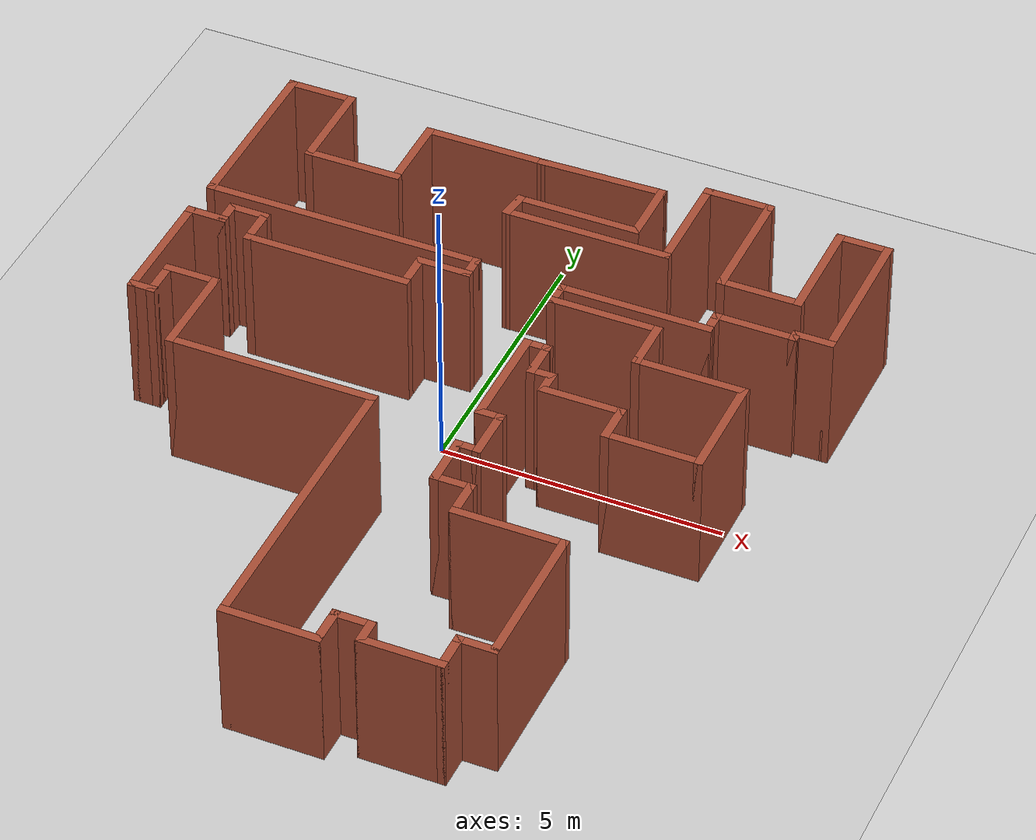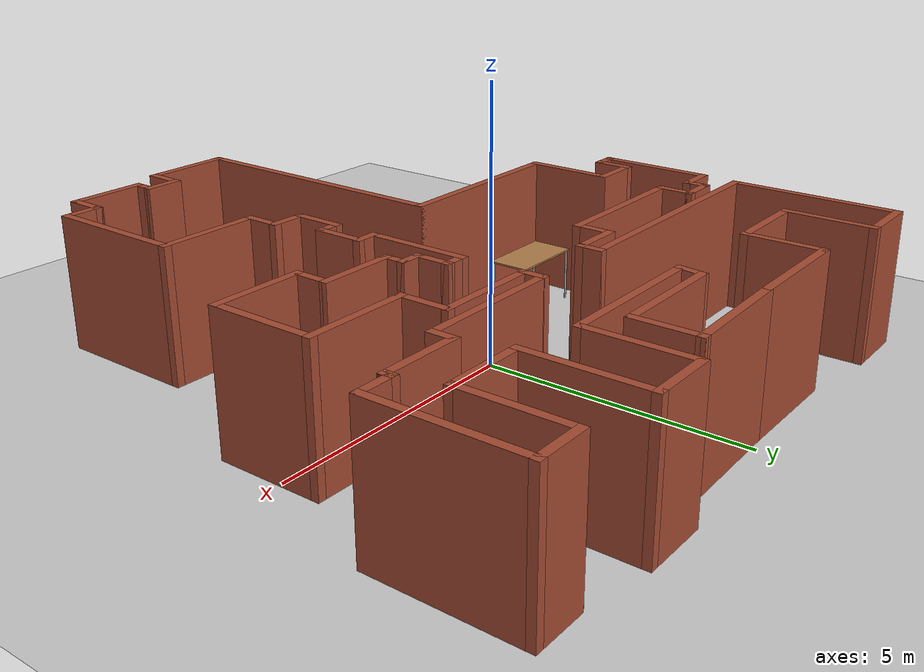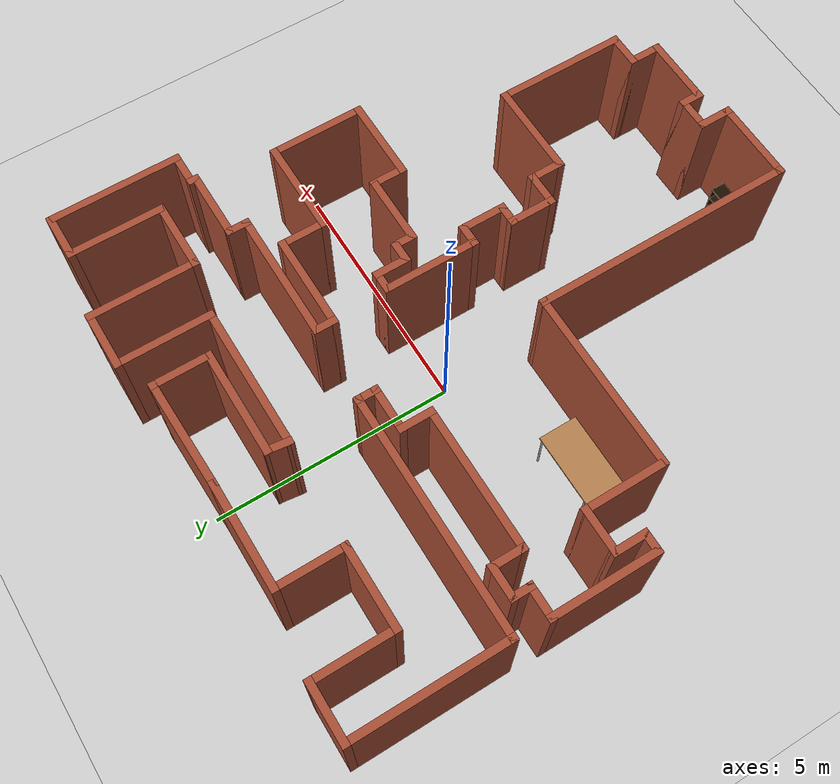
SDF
<sdf version="1.6">
 <world name="default">
  <model name="ground_plane">
   <static>1</static>
   <link name="link">
    <collision name="collision">
     <geometry><plane><normal>0 0 1</normal><size>100 100</size></plane></geometry>
     <surface>
      <contact><collide_bitmask>65535</collide_bitmask></contact>
      <friction><ode><mu>100</mu><mu2>50</mu2></ode></friction>
     </surface>
    </collision>
    <visual name="visual">
     <cast_shadows>0</cast_shadows>
     <geometry><plane><normal>0 0 1</normal><size>100 100</size></plane></geometry>
     <material>
      <script><uri>file://media/materials/scripts/gazebo.material</uri><name>Gazebo/Grey</name></script>
     </material>
    </visual>
   </link>
  </model>
  <model name="map_71">
   <pose>0.34429 -0.97627 0 0 -0 0</pose>
   <link name="Wall_0">
    <collision name="Wall_0_Collision">
     <geometry><box><size>2.25 0.15 2.5</size></box></geometry>
     <pose>0 0 1.25 0 -0 0</pose>
    </collision>
    <visual name="Wall_0_Visual">
     <pose>0 0 1.25 0 -0 0</pose>
     <geometry><box><size>2.25 0.15 2.5</size></box></geometry>
     <material>
      <script><uri>file://media/materials/scripts/gazebo.material</uri><name>Gazebo/Bricks</name></script>
      <ambient>1 1 1 1</ambient>
     </material>
     <meta><layer>0</layer></meta>
    </visual>
    <pose>-1.7 5.8 0 0 -0 3.14159</pose>
   </link>
   <link name="Wall_1">
    <collision name="Wall_1_Collision">
     <geometry><box><size>1.5 0.15 2.5</size></box></geometry>
     <pose>0 0 1.25 0 -0 0</pose>
    </collision>
    <visual name="Wall_1_Visual">
     <pose>0 0 1.25 0 -0 0</pose>
     <geometry><box><size>1.5 0.15 2.5</size></box></geometry>
     <material>
      <script><uri>file://media/materials/scripts/gazebo.material</uri><name>Gazebo/Bricks</name></script>
      <ambient>1 1 1 1</ambient>
     </material>
     <meta><layer>0</layer></meta>
    </visual>
    <pose>-2.75 5.125 0 0 -0 -1.5708</pose>
   </link>
   <link name="Wall_10">
    <collision name="Wall_10_Collision">
     <geometry><box><size>3 0.15 2.5</size></box></geometry>
     <pose>0 0 1.25 0 -0 0</pose>
    </collision>
    <visual name="Wall_10_Visual">
     <pose>0 0 1.25 0 -0 0</pose>
     <geometry><box><size>3 0.15 2.5</size></box></geometry>
     <material>
      <script><uri>file://media/materials/scripts/gazebo.material</uri><name>Gazebo/Bricks</name></script>
      <ambient>1 1 1 1</ambient>
     </material>
     <meta><layer>0</layer></meta>
    </visual>
    <pose>-2.875 2 0 0 -0 3.14159</pose>
   </link>
   <link name="Wall_11">
    <collision name="Wall_11_Collision">
     <geometry><box><size>0.75 0.15 2.5</size></box></geometry>
     <pose>0 0 1.25 0 -0 0</pose>
    </collision>
    <visual name="Wall_11_Visual">
     <pose>0 0 1.25 0 -0 0</pose>
     <geometry><box><size>0.75 0.15 2.5</size></box></geometry>
     <material>
      <script><uri>file://media/materials/scripts/gazebo.material</uri><name>Gazebo/Bricks</name></script>
      <ambient>1 1 1 1</ambient>
     </material>
     <meta><layer>0</layer></meta>
    </visual>
    <pose>-4.3 2.3 0 0 -0 1.5708</pose>
   </link>
   <link name="Wall_12">
    <collision name="Wall_12_Collision">
     <geometry><box><size>0.75 0.15 2.5</size></box></geometry>
     <pose>0 0 1.25 0 -0 0</pose>
    </collision>
    <visual name="Wall_12_Visual">
     <pose>0 0 1.25 0 -0 0</pose>
     <geometry><box><size>0.75 0.15 2.5</size></box></geometry>
     <material>
      <script><uri>file://media/materials/scripts/gazebo.material</uri><name>Gazebo/Bricks</name></script>
      <ambient>1 1 1 1</ambient>
     </material>
     <meta><layer>0</layer></meta>
    </visual>
    <pose>-4.6 2.6 0 0 -0 3.14159</pose>
   </link>
   <link name="Wall_13">
    <collision name="Wall_13_Collision">
     <geometry><box><size>0.5 0.15 2.5</size></box></geometry>
     <pose>0 0 1.25 0 -0 0</pose>
    </collision>
    <visual name="Wall_13_Visual">
     <pose>0 0 1.25 0 -0 0</pose>
     <geometry><box><size>0.5 0.15 2.5</size></box></geometry>
     <material>
      <script><uri>file://media/materials/scripts/gazebo.material</uri><name>Gazebo/Bricks</name></script>
      <ambient>1 1 1 1</ambient>
     </material>
     <meta><layer>0</layer></meta>
    </visual>
    <pose>-4.9 2.425 0 0 -0 -1.5708</pose>
   </link>
   <link name="Wall_18">
    <collision name="Wall_18_Collision">
     <geometry><box><size>0.75 0.15 2.5</size></box></geometry>
     <pose>0 0 1.25 0 -0 0</pose>
    </collision>
    <visual name="Wall_18_Visual">
     <pose>0 0 1.25 0 -0 0</pose>
     <geometry><box><size>0.75 0.15 2.5</size></box></geometry>
     <material>
      <script><uri>file://media/materials/scripts/gazebo.material</uri><name>Gazebo/Bricks</name></script>
      <ambient>1 1 1 1</ambient>
     </material>
     <meta><layer>0</layer></meta>
    </visual>
    <pose>-5.2 2.25 0 0 -0 3.14159</pose>
   </link>
   <link name="Wall_19">
    <collision name="Wall_19_Collision">
     <geometry><box><size>2.25 0.15 2.5</size></box></geometry>
     <pose>0 0 1.25 0 -0 0</pose>
    </collision>
    <visual name="Wall_19_Visual">
     <pose>0 0 1.25 0 -0 0</pose>
     <geometry><box><size>2.25 0.15 2.5</size></box></geometry>
     <material>
      <script><uri>file://media/materials/scripts/gazebo.material</uri><name>Gazebo/Bricks</name></script>
      <ambient>1 1 1 1</ambient>
     </material>
     <meta><layer>0</layer></meta>
    </visual>
    <pose>-5.5 1.2 0 0 -0 -1.5708</pose>
   </link>
   <link name="Wall_2">
    <collision name="Wall_2_Collision">
     <geometry><box><size>1.75 0.15 2.5</size></box></geometry>
     <pose>0 0 1.25 0 -0 0</pose>
    </collision>
    <visual name="Wall_2_Visual">
     <pose>0 0 1.25 0 -0 0</pose>
     <geometry><box><size>1.75 0.15 2.5</size></box></geometry>
     <material>
      <script><uri>file://media/materials/scripts/gazebo.material</uri><name>Gazebo/Bricks</name></script>
      <ambient>1 1 1 1</ambient>
     </material>
     <meta><layer>0</layer></meta>
    </visual>
    <pose>-3.55 4.45 0 0 -0 3.14159</pose>
   </link>
   <link name="Wall_20">
    <collision name="Wall_20_Collision">
     <geometry><box><size>0.5 0.15 2.5</size></box></geometry>
     <pose>0 0 1.25 0 -0 0</pose>
    </collision>
    <visual name="Wall_20_Visual">
     <pose>0 0 1.25 0 -0 0</pose>
     <geometry><box><size>0.5 0.15 2.5</size></box></geometry>
     <material>
      <script><uri>file://media/materials/scripts/gazebo.material</uri><name>Gazebo/Bricks</name></script>
      <ambient>1 1 1 1</ambient>
     </material>
     <meta><layer>0</layer></meta>
    </visual>
    <pose>-5.325 0.15 0 0 -0 0</pose>
   </link>
   <link name="Wall_21">
    <collision name="Wall_21_Collision">
     <geometry><box><size>0.75 0.15 2.5</size></box></geometry>
     <pose>0 0 1.25 0 -0 0</pose>
    </collision>
    <visual name="Wall_21_Visual">
     <pose>0 0 1.25 0 -0 0</pose>
     <geometry><box><size>0.75 0.15 2.5</size></box></geometry>
     <material>
      <script><uri>file://media/materials/scripts/gazebo.material</uri><name>Gazebo/Bricks</name></script>
      <ambient>1 1 1 1</ambient>
     </material>
     <meta><layer>0</layer></meta>
    </visual>
    <pose>-5.15 0.45 0 0 -0 1.5708</pose>
   </link>
   <link name="Wall_22">
    <collision name="Wall_22_Collision">
     <geometry><box><size>1 0.15 2.5</size></box></geometry>
     <pose>0 0 1.25 0 -0 0</pose>
    </collision>
    <visual name="Wall_22_Visual">
     <pose>0 0 1.25 0 -0 0</pose>
     <geometry><box><size>1 0.15 2.5</size></box></geometry>
     <material>
      <script><uri>file://media/materials/scripts/gazebo.material</uri><name>Gazebo/Bricks</name></script>
      <ambient>1 1 1 1</ambient>
     </material>
     <meta><layer>0</layer></meta>
    </visual>
    <pose>-4.725 0.75 0 0 -0 0</pose>
   </link>
   <link name="Wall_23">
    <collision name="Wall_23_Collision">
     <geometry><box><size>1.75 0.15 2.5</size></box></geometry>
     <pose>0 0 1.25 0 -0 0</pose>
    </collision>
    <visual name="Wall_23_Visual">
     <pose>0 0 1.25 0 -0 0</pose>
     <geometry><box><size>1.75 0.15 2.5</size></box></geometry>
     <material>
      <script><uri>file://media/materials/scripts/gazebo.material</uri><name>Gazebo/Bricks</name></script>
      <ambient>1 1 1 1</ambient>
     </material>
     <meta><layer>0</layer></meta>
    </visual>
    <pose>-4.3 -0.05 0 0 -0 -1.5708</pose>
   </link>
   <link name="Wall_24">
    <collision name="Wall_24_Collision">
     <geometry><box><size>3.75 0.15 2.5</size></box></geometry>
     <pose>0 0 1.25 0 -0 0</pose>
    </collision>
    <visual name="Wall_24_Visual">
     <pose>0 0 1.25 0 -0 0</pose>
     <geometry><box><size>3.75 0.15 2.5</size></box></geometry>
     <material>
      <script><uri>file://media/materials/scripts/gazebo.material</uri><name>Gazebo/Bricks</name></script>
      <ambient>1 1 1 1</ambient>
     </material>
     <meta><layer>0</layer></meta>
    </visual>
    <pose>-2.5 -0.85 0 0 -0 0</pose>
   </link>
   <link name="Wall_25">
    <collision name="Wall_25_Collision">
     <geometry><box><size>5.5 0.15 2.5</size></box></geometry>
     <pose>0 0 1.25 0 -0 0</pose>
    </collision>
    <visual name="Wall_25_Visual">
     <pose>0 0 1.25 0 -0 0</pose>
     <geometry><box><size>5.5 0.15 2.5</size></box></geometry>
     <material>
      <script><uri>file://media/materials/scripts/gazebo.material</uri><name>Gazebo/Bricks</name></script>
      <ambient>1 1 1 1</ambient>
     </material>
     <meta><layer>0</layer></meta>
    </visual>
    <pose>-0.7 -3.525 0 0 -0 -1.5708</pose>
   </link>
   <link name="Wall_26">
    <collision name="Wall_26_Collision">
     <geometry><box><size>1.75 0.15 2.5</size></box></geometry>
     <pose>0 0 1.25 0 -0 0</pose>
    </collision>
    <visual name="Wall_26_Visual">
     <pose>0 0 1.25 0 -0 0</pose>
     <geometry><box><size>1.75 0.15 2.5</size></box></geometry>
     <material>
      <script><uri>file://media/materials/scripts/gazebo.material</uri><name>Gazebo/Bricks</name></script>
      <ambient>1 1 1 1</ambient>
     </material>
     <meta><layer>0</layer></meta>
    </visual>
    <pose>0.1 -6.2 0 0 -0 0</pose>
   </link>
   <link name="Wall_27">
    <collision name="Wall_27_Collision">
     <geometry><box><size>0.75 0.15 2.5</size></box></geometry>
     <pose>0 0 1.25 0 -0 0</pose>
    </collision>
    <visual name="Wall_27_Visual">
     <pose>0 0 1.25 0 -0 0</pose>
     <geometry><box><size>0.75 0.15 2.5</size></box></geometry>
     <material>
      <script><uri>file://media/materials/scripts/gazebo.material</uri><name>Gazebo/Bricks</name></script>
      <ambient>1 1 1 1</ambient>
     </material>
     <meta><layer>0</layer></meta>
    </visual>
    <pose>0.9 -5.9 0 0 -0 1.5708</pose>
   </link>
   <link name="Wall_28">
    <collision name="Wall_28_Collision">
     <geometry><box><size>0.75 0.15 2.5</size></box></geometry>
     <pose>0 0 1.25 0 -0 0</pose>
    </collision>
    <visual name="Wall_28_Visual">
     <pose>0 0 1.25 0 -0 0</pose>
     <geometry><box><size>0.75 0.15 2.5</size></box></geometry>
     <material>
      <script><uri>file://media/materials/scripts/gazebo.material</uri><name>Gazebo/Bricks</name></script>
      <ambient>1 1 1 1</ambient>
     </material>
     <meta><layer>0</layer></meta>
    </visual>
    <pose>1.2 -5.6 0 0 -0 0</pose>
   </link>
   <link name="Wall_29">
    <collision name="Wall_29_Collision">
     <geometry><box><size>0.5 0.15 2.5</size></box></geometry>
     <pose>0 0 1.25 0 -0 0</pose>
    </collision>
    <visual name="Wall_29_Visual">
     <pose>0 0 1.25 0 -0 0</pose>
     <geometry><box><size>0.5 0.15 2.5</size></box></geometry>
     <material>
      <script><uri>file://media/materials/scripts/gazebo.material</uri><name>Gazebo/Bricks</name></script>
      <ambient>1 1 1 1</ambient>
     </material>
     <meta><layer>0</layer></meta>
    </visual>
    <pose>1.5 -5.775 0 0 -0 -1.5708</pose>
   </link>
   <link name="Wall_3">
    <collision name="Wall_3_Collision">
     <geometry><box><size>1.75 0.15 2.5</size></box></geometry>
     <pose>0 0 1.25 0 -0 0</pose>
    </collision>
    <visual name="Wall_3_Visual">
     <pose>0 0 1.25 0 -0 0</pose>
     <geometry><box><size>1.75 0.15 2.5</size></box></geometry>
     <material>
      <script><uri>file://media/materials/scripts/gazebo.material</uri><name>Gazebo/Bricks</name></script>
      <ambient>1 1 1 1</ambient>
     </material>
     <meta><layer>0</layer></meta>
    </visual>
    <pose>-4.35 5.25 0 0 -0 1.5708</pose>
   </link>
   <link name="Wall_30">
    <collision name="Wall_30_Collision">
     <geometry><box><size>1.5 0.15 2.5</size></box></geometry>
     <pose>0 0 1.25 0 -0 0</pose>
    </collision>
    <visual name="Wall_30_Visual">
     <pose>0 0 1.25 0 -0 0</pose>
     <geometry><box><size>1.5 0.15 2.5</size></box></geometry>
     <material>
      <script><uri>file://media/materials/scripts/gazebo.material</uri><name>Gazebo/Bricks</name></script>
      <ambient>1 1 1 1</ambient>
     </material>
     <meta><layer>0</layer></meta>
    </visual>
    <pose>2.175 -5.95 0 0 -0 0</pose>
   </link>
   <link name="Wall_31">
    <collision name="Wall_31_Collision">
     <geometry><box><size>0.75 0.15 2.5</size></box></geometry>
     <pose>0 0 1.25 0 -0 0</pose>
    </collision>
    <visual name="Wall_31_Visual">
     <pose>0 0 1.25 0 -0 0</pose>
     <geometry><box><size>0.75 0.15 2.5</size></box></geometry>
     <material>
      <script><uri>file://media/materials/scripts/gazebo.material</uri><name>Gazebo/Bricks</name></script>
      <ambient>1 1 1 1</ambient>
     </material>
     <meta><layer>0</layer></meta>
    </visual>
    <pose>2.85 -5.65 0 0 -0 1.5708</pose>
   </link>
   <link name="Wall_32">
    <collision name="Wall_32_Collision">
     <geometry><box><size>0.75 0.15 2.5</size></box></geometry>
     <pose>0 0 1.25 0 -0 0</pose>
    </collision>
    <visual name="Wall_32_Visual">
     <pose>0 0 1.25 0 -0 0</pose>
     <geometry><box><size>0.75 0.15 2.5</size></box></geometry>
     <material>
      <script><uri>file://media/materials/scripts/gazebo.material</uri><name>Gazebo/Bricks</name></script>
      <ambient>1 1 1 1</ambient>
     </material>
     <meta><layer>0</layer></meta>
    </visual>
    <pose>3.15 -5.35 0 0 -0 0</pose>
   </link>
   <link name="Wall_33">
    <collision name="Wall_33_Collision">
     <geometry><box><size>2.75 0.15 2.5</size></box></geometry>
     <pose>0 0 1.25 0 -0 0</pose>
    </collision>
    <visual name="Wall_33_Visual">
     <pose>0 0 1.25 0 -0 0</pose>
     <geometry><box><size>2.75 0.15 2.5</size></box></geometry>
     <material>
      <script><uri>file://media/materials/scripts/gazebo.material</uri><name>Gazebo/Bricks</name></script>
      <ambient>1 1 1 1</ambient>
     </material>
     <meta><layer>0</layer></meta>
    </visual>
    <pose>3.45 -4.05 0 0 -0 1.5708</pose>
   </link>
   <link name="Wall_34">
    <collision name="Wall_34_Collision">
     <geometry><box><size>2 0.15 2.5</size></box></geometry>
     <pose>0 0 1.25 0 -0 0</pose>
    </collision>
    <visual name="Wall_34_Visual">
     <pose>0 0 1.25 0 -0 0</pose>
     <geometry><box><size>2 0.15 2.5</size></box></geometry>
     <material>
      <script><uri>file://media/materials/scripts/gazebo.material</uri><name>Gazebo/Bricks</name></script>
      <ambient>1 1 1 1</ambient>
     </material>
     <meta><layer>0</layer></meta>
    </visual>
    <pose>2.525 -2.75 0 0 -0 3.14159</pose>
   </link>
   <link name="Wall_35">
    <collision name="Wall_35_Collision">
     <geometry><box><size>0.75 0.15 2.5</size></box></geometry>
     <pose>0 0 1.25 0 -0 0</pose>
    </collision>
    <visual name="Wall_35_Visual">
     <pose>0 0 1.25 0 -0 0</pose>
     <geometry><box><size>0.75 0.15 2.5</size></box></geometry>
     <material>
      <script><uri>file://media/materials/scripts/gazebo.material</uri><name>Gazebo/Bricks</name></script>
      <ambient>1 1 1 1</ambient>
     </material>
     <meta><layer>0</layer></meta>
    </visual>
    <pose>1.6 -2.45 0 0 -0 1.5708</pose>
   </link>
   <link name="Wall_36">
    <collision name="Wall_36_Collision">
     <geometry><box><size>0.75 0.15 2.5</size></box></geometry>
     <pose>0 0 1.25 0 -0 0</pose>
    </collision>
    <visual name="Wall_36_Visual">
     <pose>0 0 1.25 0 -0 0</pose>
     <geometry><box><size>0.75 0.15 2.5</size></box></geometry>
     <material>
      <script><uri>file://media/materials/scripts/gazebo.material</uri><name>Gazebo/Bricks</name></script>
      <ambient>1 1 1 1</ambient>
     </material>
     <meta><layer>0</layer></meta>
    </visual>
    <pose>1.3 -2.15 0 0 -0 3.14159</pose>
   </link>
   <link name="Wall_37">
    <collision name="Wall_37_Collision">
     <geometry><box><size>1 0.15 2.5</size></box></geometry>
     <pose>0 0 1.25 0 -0 0</pose>
    </collision>
    <visual name="Wall_37_Visual">
     <pose>0 0 1.25 0 -0 0</pose>
     <geometry><box><size>1 0.15 2.5</size></box></geometry>
     <material>
      <script><uri>file://media/materials/scripts/gazebo.material</uri><name>Gazebo/Bricks</name></script>
      <ambient>1 1 1 1</ambient>
     </material>
     <meta><layer>0</layer></meta>
    </visual>
    <pose>1 -1.725 0 0 -0 1.5708</pose>
   </link>
   <link name="Wall_38">
    <collision name="Wall_38_Collision">
     <geometry><box><size>0.5 0.15 2.5</size></box></geometry>
     <pose>0 0 1.25 0 -0 0</pose>
    </collision>
    <visual name="Wall_38_Visual">
     <pose>0 0 1.25 0 -0 0</pose>
     <geometry><box><size>0.5 0.15 2.5</size></box></geometry>
     <material>
      <script><uri>file://media/materials/scripts/gazebo.material</uri><name>Gazebo/Bricks</name></script>
      <ambient>1 1 1 1</ambient>
     </material>
     <meta><layer>0</layer></meta>
    </visual>
    <pose>1.175 -1.3 0 0 -0 0</pose>
   </link>
   <link name="Wall_39">
    <collision name="Wall_39_Collision">
     <geometry><box><size>1 0.15 2.5</size></box></geometry>
     <pose>0 0 1.25 0 -0 0</pose>
    </collision>
    <visual name="Wall_39_Visual">
     <pose>0 0 1.25 0 -0 0</pose>
     <geometry><box><size>1 0.15 2.5</size></box></geometry>
     <material>
      <script><uri>file://media/materials/scripts/gazebo.material</uri><name>Gazebo/Bricks</name></script>
      <ambient>1 1 1 1</ambient>
     </material>
     <meta><layer>0</layer></meta>
    </visual>
    <pose>1.35 -0.875 0 0 -0 1.5708</pose>
   </link>
   <link name="Wall_4">
    <collision name="Wall_4_Collision">
     <geometry><box><size>1.25 0.15 2.5</size></box></geometry>
     <pose>0 0 1.25 0 -0 0</pose>
    </collision>
    <visual name="Wall_4_Visual">
     <pose>0 0 1.25 0 -0 0</pose>
     <geometry><box><size>1.25 0.15 2.5</size></box></geometry>
     <material>
      <script><uri>file://media/materials/scripts/gazebo.material</uri><name>Gazebo/Bricks</name></script>
      <ambient>1 1 1 1</ambient>
     </material>
     <meta><layer>0</layer></meta>
    </visual>
    <pose>-4.9 6.05 0 0 -0 3.14159</pose>
   </link>
   <link name="Wall_40">
    <collision name="Wall_40_Collision">
     <geometry><box><size>0.5 0.15 2.5</size></box></geometry>
     <pose>0 0 1.25 0 -0 0</pose>
    </collision>
    <visual name="Wall_40_Visual">
     <pose>0 0 1.25 0 -0 0</pose>
     <geometry><box><size>0.5 0.15 2.5</size></box></geometry>
     <material>
      <script><uri>file://media/materials/scripts/gazebo.material</uri><name>Gazebo/Bricks</name></script>
      <ambient>1 1 1 1</ambient>
     </material>
     <meta><layer>0</layer></meta>
    </visual>
    <pose>1.175 -0.45 0 0 -0 3.14159</pose>
   </link>
   <link name="Wall_41">
    <collision name="Wall_41_Collision">
     <geometry><box><size>2 0.15 2.5</size></box></geometry>
     <pose>0 0 1.25 0 -0 0</pose>
    </collision>
    <visual name="Wall_41_Visual">
     <pose>0 0 1.25 0 -0 0</pose>
     <geometry><box><size>2 0.15 2.5</size></box></geometry>
     <material>
      <script><uri>file://media/materials/scripts/gazebo.material</uri><name>Gazebo/Bricks</name></script>
      <ambient>1 1 1 1</ambient>
     </material>
     <meta><layer>0</layer></meta>
    </visual>
    <pose>1 0.475 0 0 -0 1.5708</pose>
   </link>
   <link name="Wall_42">
    <collision name="Wall_42_Collision">
     <geometry><box><size>0.5 0.15 2.5</size></box></geometry>
     <pose>0 0 1.25 0 -0 0</pose>
    </collision>
    <visual name="Wall_42_Visual">
     <pose>0 0 1.25 0 -0 0</pose>
     <geometry><box><size>0.5 0.15 2.5</size></box></geometry>
     <material>
      <script><uri>file://media/materials/scripts/gazebo.material</uri><name>Gazebo/Bricks</name></script>
      <ambient>1 1 1 1</ambient>
     </material>
     <meta><layer>0</layer></meta>
    </visual>
    <pose>1.175 1.4 0 0 -0 0</pose>
   </link>
   <link name="Wall_43">
    <collision name="Wall_43_Collision">
     <geometry><box><size>0.75 0.15 2.5</size></box></geometry>
     <pose>0 0 1.25 0 -0 0</pose>
    </collision>
    <visual name="Wall_43_Visual">
     <pose>0 0 1.25 0 -0 0</pose>
     <geometry><box><size>0.75 0.15 2.5</size></box></geometry>
     <material>
      <script><uri>file://media/materials/scripts/gazebo.material</uri><name>Gazebo/Bricks</name></script>
      <ambient>1 1 1 1</ambient>
     </material>
     <meta><layer>0</layer></meta>
    </visual>
    <pose>1.35 1.1 0 0 -0 -1.5708</pose>
   </link>
   <link name="Wall_44">
    <collision name="Wall_44_Collision">
     <geometry><box><size>0.5 0.15 2.5</size></box></geometry>
     <pose>0 0 1.25 0 -0 0</pose>
    </collision>
    <visual name="Wall_44_Visual">
     <pose>0 0 1.25 0 -0 0</pose>
     <geometry><box><size>0.5 0.15 2.5</size></box></geometry>
     <material>
      <script><uri>file://media/materials/scripts/gazebo.material</uri><name>Gazebo/Bricks</name></script>
      <ambient>1 1 1 1</ambient>
     </material>
     <meta><layer>0</layer></meta>
    </visual>
    <pose>1.525 0.8 0 0 -0 0</pose>
   </link>
   <link name="Wall_45">
    <collision name="Wall_45_Collision">
     <geometry><box><size>0.5 0.15 2.5</size></box></geometry>
     <pose>0 0 1.25 0 -0 0</pose>
    </collision>
    <visual name="Wall_45_Visual">
     <pose>0 0 1.25 0 -0 0</pose>
     <geometry><box><size>0.5 0.15 2.5</size></box></geometry>
     <material>
      <script><uri>file://media/materials/scripts/gazebo.material</uri><name>Gazebo/Bricks</name></script>
      <ambient>1 1 1 1</ambient>
     </material>
     <meta><layer>0</layer></meta>
    </visual>
    <pose>1.7 0.625 0 0 -0 -1.5708</pose>
   </link>
   <link name="Wall_46">
    <collision name="Wall_46_Collision">
     <geometry><box><size>1.5 0.15 2.5</size></box></geometry>
     <pose>0 0 1.25 0 -0 0</pose>
    </collision>
    <visual name="Wall_46_Visual">
     <pose>0 0 1.25 0 -0 0</pose>
     <geometry><box><size>1.5 0.15 2.5</size></box></geometry>
     <material>
      <script><uri>file://media/materials/scripts/gazebo.material</uri><name>Gazebo/Bricks</name></script>
      <ambient>1 1 1 1</ambient>
     </material>
     <meta><layer>0</layer></meta>
    </visual>
    <pose>2.375 0.45 0 0 -0 0</pose>
   </link>
   <link name="Wall_47">
    <collision name="Wall_47_Collision">
     <geometry><box><size>0.75 0.15 2.5</size></box></geometry>
     <pose>0 0 1.25 0 -0 0</pose>
    </collision>
    <visual name="Wall_47_Visual">
     <pose>0 0 1.25 0 -0 0</pose>
     <geometry><box><size>0.75 0.15 2.5</size></box></geometry>
     <material>
      <script><uri>file://media/materials/scripts/gazebo.material</uri><name>Gazebo/Bricks</name></script>
      <ambient>1 1 1 1</ambient>
     </material>
     <meta><layer>0</layer></meta>
    </visual>
    <pose>3.05 0.15 0 0 -0 -1.5708</pose>
   </link>
   <link name="Wall_48">
    <collision name="Wall_48_Collision">
     <geometry><box><size>1.75 0.15 2.5</size></box></geometry>
     <pose>0 0 1.25 0 -0 0</pose>
    </collision>
    <visual name="Wall_48_Visual">
     <pose>0 0 1.25 0 -0 0</pose>
     <geometry><box><size>1.75 0.15 2.5</size></box></geometry>
     <material>
      <script><uri>file://media/materials/scripts/gazebo.material</uri><name>Gazebo/Bricks</name></script>
      <ambient>1 1 1 1</ambient>
     </material>
     <meta><layer>0</layer></meta>
    </visual>
    <pose>3.85 -0.15 0 0 -0 0</pose>
   </link>
   <link name="Wall_49">
    <collision name="Wall_49_Collision">
     <geometry><box><size>2 0.15 2.5</size></box></geometry>
     <pose>0 0 1.25 0 -0 0</pose>
    </collision>
    <visual name="Wall_49_Visual">
     <pose>0 0 1.25 0 -0 0</pose>
     <geometry><box><size>2 0.15 2.5</size></box></geometry>
     <material>
      <script><uri>file://media/materials/scripts/gazebo.material</uri><name>Gazebo/Bricks</name></script>
      <ambient>1 1 1 1</ambient>
     </material>
     <meta><layer>0</layer></meta>
    </visual>
    <pose>4.65 0.775 0 0 -0 1.5708</pose>
   </link>
   <link name="Wall_5">
    <collision name="Wall_5_Collision">
     <geometry><box><size>3.25 0.15 2.5</size></box></geometry>
     <pose>0 0 1.25 0 -0 0</pose>
    </collision>
    <visual name="Wall_5_Visual">
     <pose>0 0 1.25 0 -0 0</pose>
     <geometry><box><size>3.25 0.15 2.5</size></box></geometry>
     <material>
      <script><uri>file://media/materials/scripts/gazebo.material</uri><name>Gazebo/Bricks</name></script>
      <ambient>1 1 1 1</ambient>
     </material>
     <meta><layer>0</layer></meta>
    </visual>
    <pose>-5.45 4.5 0 0 -0 -1.5708</pose>
   </link>
   <link name="Wall_50">
    <collision name="Wall_50_Collision">
     <geometry><box><size>2 0.15 2.5</size></box></geometry>
     <pose>0 0 1.25 0 -0 0</pose>
    </collision>
    <visual name="Wall_50_Visual">
     <pose>0 0 1.25 0 -0 0</pose>
     <geometry><box><size>2 0.15 2.5</size></box></geometry>
     <material>
      <script><uri>file://media/materials/scripts/gazebo.material</uri><name>Gazebo/Bricks</name></script>
      <ambient>1 1 1 1</ambient>
     </material>
     <meta><layer>0</layer></meta>
    </visual>
    <pose>3.725 1.7 0 0 -0 3.14159</pose>
   </link>
   <link name="Wall_51">
    <collision name="Wall_51_Collision">
     <geometry><box><size>1 0.15 2.5</size></box></geometry>
     <pose>0 0 1.25 0 -0 0</pose>
    </collision>
    <visual name="Wall_51_Visual">
     <pose>0 0 1.25 0 -0 0</pose>
     <geometry><box><size>1 0.15 2.5</size></box></geometry>
     <material>
      <script><uri>file://media/materials/scripts/gazebo.material</uri><name>Gazebo/Bricks</name></script>
      <ambient>1 1 1 1</ambient>
     </material>
     <meta><layer>0</layer></meta>
    </visual>
    <pose>2.8 2.125 0 0 -0 1.5708</pose>
   </link>
   <link name="Wall_52">
    <collision name="Wall_52_Collision">
     <geometry><box><size>2 0.15 2.5</size></box></geometry>
     <pose>0 0 1.25 0 -0 0</pose>
    </collision>
    <visual name="Wall_52_Visual">
     <pose>0 0 1.25 0 -0 0</pose>
     <geometry><box><size>2 0.15 2.5</size></box></geometry>
     <material>
      <script><uri>file://media/materials/scripts/gazebo.material</uri><name>Gazebo/Bricks</name></script>
      <ambient>1 1 1 1</ambient>
     </material>
     <meta><layer>0</layer></meta>
    </visual>
    <pose>1.875 2.55 0 0 -0 3.14159</pose>
   </link>
   <link name="Wall_53">
    <collision name="Wall_53_Collision">
     <geometry><box><size>0.5 0.15 2.5</size></box></geometry>
     <pose>0 0 1.25 0 -0 0</pose>
    </collision>
    <visual name="Wall_53_Visual">
     <pose>0 0 1.25 0 -0 0</pose>
     <geometry><box><size>0.5 0.15 2.5</size></box></geometry>
     <material>
      <script><uri>file://media/materials/scripts/gazebo.material</uri><name>Gazebo/Bricks</name></script>
      <ambient>1 1 1 1</ambient>
     </material>
     <meta><layer>0</layer></meta>
    </visual>
    <pose>0.95 2.725 0 0 -0 1.5708</pose>
   </link>
   <link name="Wall_54">
    <collision name="Wall_54_Collision">
     <geometry><box><size>2.75 0.15 2.5</size></box></geometry>
     <pose>0 0 1.25 0 -0 0</pose>
    </collision>
    <visual name="Wall_54_Visual">
     <pose>0 0 1.25 0 -0 0</pose>
     <geometry><box><size>2.75 0.15 2.5</size></box></geometry>
     <material>
      <script><uri>file://media/materials/scripts/gazebo.material</uri><name>Gazebo/Bricks</name></script>
      <ambient>1 1 1 1</ambient>
     </material>
     <meta><layer>0</layer></meta>
    </visual>
    <pose>2.25 2.9 0 0 -0 0</pose>
   </link>
   <link name="Wall_55">
    <collision name="Wall_55_Collision">
     <geometry><box><size>0.5 0.15 2.5</size></box></geometry>
     <pose>0 0 1.25 0 -0 0</pose>
    </collision>
    <visual name="Wall_55_Visual">
     <pose>0 0 1.25 0 -0 0</pose>
     <geometry><box><size>0.5 0.15 2.5</size></box></geometry>
     <material>
      <script><uri>file://media/materials/scripts/gazebo.material</uri><name>Gazebo/Bricks</name></script>
      <ambient>1 1 1 1</ambient>
     </material>
     <meta><layer>0</layer></meta>
    </visual>
    <pose>3.55 3.075 0 0 -0 1.5708</pose>
   </link>
   <link name="Wall_56">
    <collision name="Wall_56_Collision">
     <geometry><box><size>1.5 0.15 2.5</size></box></geometry>
     <pose>0 0 1.25 0 -0 0</pose>
    </collision>
    <visual name="Wall_56_Visual">
     <pose>0 0 1.25 0 -0 0</pose>
     <geometry><box><size>1.5 0.15 2.5</size></box></geometry>
     <material>
      <script><uri>file://media/materials/scripts/gazebo.material</uri><name>Gazebo/Bricks</name></script>
      <ambient>1 1 1 1</ambient>
     </material>
     <meta><layer>0</layer></meta>
    </visual>
    <pose>4.225 3.25 0 0 -0 0</pose>
   </link>
   <link name="Wall_57">
    <collision name="Wall_57_Collision">
     <geometry><box><size>0.25 0.15 2.5</size></box></geometry>
     <pose>0 0 1.25 0 -0 0</pose>
    </collision>
    <visual name="Wall_57_Visual">
     <pose>0 0 1.25 0 -0 0</pose>
     <geometry><box><size>0.25 0.15 2.5</size></box></geometry>
     <material>
      <script><uri>file://media/materials/scripts/gazebo.material</uri><name>Gazebo/Bricks</name></script>
      <ambient>1 1 1 1</ambient>
     </material>
     <meta><layer>0</layer></meta>
    </visual>
    <pose>4.9 3.3 0 0 -0 1.5708</pose>
   </link>
   <link name="Wall_58">
    <collision name="Wall_58_Collision">
     <geometry><box><size>0.75 0.15 2.5</size></box></geometry>
     <pose>0 0 1.25 0 -0 0</pose>
    </collision>
    <visual name="Wall_58_Visual">
     <pose>0 0 1.25 0 -0 0</pose>
     <geometry><box><size>0.75 0.15 2.5</size></box></geometry>
     <material>
      <script><uri>file://media/materials/scripts/gazebo.material</uri><name>Gazebo/Bricks</name></script>
      <ambient>1 1 1 1</ambient>
     </material>
     <meta><layer>0</layer></meta>
    </visual>
    <pose>5.2 3.35 0 0 -0 0</pose>
   </link>
   <link name="Wall_59">
    <collision name="Wall_59_Collision">
     <geometry><box><size>2.75 0.15 2.5</size></box></geometry>
     <pose>0 0 1.25 0 -0 0</pose>
    </collision>
    <visual name="Wall_59_Visual">
     <pose>0 0 1.25 0 -0 0</pose>
     <geometry><box><size>2.75 0.15 2.5</size></box></geometry>
     <material>
      <script><uri>file://media/materials/scripts/gazebo.material</uri><name>Gazebo/Bricks</name></script>
      <ambient>1 1 1 1</ambient>
     </material>
     <meta><layer>0</layer></meta>
    </visual>
    <pose>5.5 4.65 0 0 -0 1.5708</pose>
   </link>
   <link name="Wall_6">
    <collision name="Wall_6_Collision">
     <geometry><box><size>5 0.15 2.5</size></box></geometry>
     <pose>0 0 1.25 0 -0 0</pose>
    </collision>
    <visual name="Wall_6_Visual">
     <pose>0 0 1.25 0 -0 0</pose>
     <geometry><box><size>5 0.15 2.5</size></box></geometry>
     <material>
      <script><uri>file://media/materials/scripts/gazebo.material</uri><name>Gazebo/Bricks</name></script>
      <ambient>1 1 1 1</ambient>
     </material>
     <meta><layer>0</layer></meta>
    </visual>
    <pose>-3.025 2.95 0 0 -0 0</pose>
   </link>
   <link name="Wall_60">
    <collision name="Wall_60_Collision">
     <geometry><box><size>1 0.15 2.5</size></box></geometry>
     <pose>0 0 1.25 0 -0 0</pose>
    </collision>
    <visual name="Wall_60_Visual">
     <pose>0 0 1.25 0 -0 0</pose>
     <geometry><box><size>1 0.15 2.5</size></box></geometry>
     <material>
      <script><uri>file://media/materials/scripts/gazebo.material</uri><name>Gazebo/Bricks</name></script>
      <ambient>1 1 1 1</ambient>
     </material>
     <meta><layer>0</layer></meta>
    </visual>
    <pose>5.075 5.95 0 0 -0 3.14159</pose>
   </link>
   <link name="Wall_62">
    <collision name="Wall_62_Collision">
     <geometry><box><size>2 0.15 2.5</size></box></geometry>
     <pose>0 0 1.25 0 -0 0</pose>
    </collision>
    <visual name="Wall_62_Visual">
     <pose>0 0 1.25 0 -0 0</pose>
     <geometry><box><size>2 0.15 2.5</size></box></geometry>
     <material>
      <script><uri>file://media/materials/scripts/gazebo.material</uri><name>Gazebo/Bricks</name></script>
      <ambient>1 1 1 1</ambient>
     </material>
     <meta><layer>0</layer></meta>
    </visual>
    <pose>4.65 5.025 0 0 -0 -1.5708</pose>
   </link>
   <link name="Wall_63">
    <collision name="Wall_63_Collision">
     <geometry><box><size>1.5 0.15 2.5</size></box></geometry>
     <pose>0 0 1.25 0 -0 0</pose>
    </collision>
    <visual name="Wall_63_Visual">
     <pose>0 0 1.25 0 -0 0</pose>
     <geometry><box><size>1.5 0.15 2.5</size></box></geometry>
     <material>
      <script><uri>file://media/materials/scripts/gazebo.material</uri><name>Gazebo/Bricks</name></script>
      <ambient>1 1 1 1</ambient>
     </material>
     <meta><layer>0</layer></meta>
    </visual>
    <pose>3.975 4.1 0 0 -0 3.14159</pose>
   </link>
   <link name="Wall_64">
    <collision name="Wall_64_Collision">
     <geometry><box><size>2.25 0.15 2.5</size></box></geometry>
     <pose>0 0 1.25 0 -0 0</pose>
    </collision>
    <visual name="Wall_64_Visual">
     <pose>0 0 1.25 0 -0 0</pose>
     <geometry><box><size>2.25 0.15 2.5</size></box></geometry>
     <material>
      <script><uri>file://media/materials/scripts/gazebo.material</uri><name>Gazebo/Bricks</name></script>
      <ambient>1 1 1 1</ambient>
     </material>
     <meta><layer>0</layer></meta>
    </visual>
    <pose>3.3 5.15 0 0 -0 1.5708</pose>
   </link>
   <link name="Wall_65">
    <collision name="Wall_65_Collision">
     <geometry><box><size>1.25 0.15 2.5</size></box></geometry>
     <pose>0 0 1.25 0 -0 0</pose>
    </collision>
    <visual name="Wall_65_Visual">
     <pose>0 0 1.25 0 -0 0</pose>
     <geometry><box><size>1.25 0.15 2.5</size></box></geometry>
     <material>
      <script><uri>file://media/materials/scripts/gazebo.material</uri><name>Gazebo/Bricks</name></script>
      <ambient>1 1 1 1</ambient>
     </material>
     <meta><layer>0</layer></meta>
    </visual>
    <pose>2.75 6.2 0 0 -0 3.14159</pose>
   </link>
   <link name="Wall_66">
    <collision name="Wall_66_Collision">
     <geometry><box><size>2 0.15 2.5</size></box></geometry>
     <pose>0 0 1.25 0 -0 0</pose>
    </collision>
    <visual name="Wall_66_Visual">
     <pose>0 0 1.25 0 -0 0</pose>
     <geometry><box><size>2 0.15 2.5</size></box></geometry>
     <material>
      <script><uri>file://media/materials/scripts/gazebo.material</uri><name>Gazebo/Bricks</name></script>
      <ambient>1 1 1 1</ambient>
     </material>
     <meta><layer>0</layer></meta>
    </visual>
    <pose>2.2 5.275 0 0 -0 -1.5708</pose>
   </link>
   <link name="Wall_7">
    <collision name="Wall_7_Collision">
     <geometry><box><size>0.5 0.15 2.5</size></box></geometry>
     <pose>0 0 1.25 0 -0 0</pose>
    </collision>
    <visual name="Wall_7_Visual">
     <pose>0 0 1.25 0 -0 0</pose>
     <geometry><box><size>0.5 0.15 2.5</size></box></geometry>
     <material>
      <script><uri>file://media/materials/scripts/gazebo.material</uri><name>Gazebo/Bricks</name></script>
      <ambient>1 1 1 1</ambient>
     </material>
     <meta><layer>0</layer></meta>
    </visual>
    <pose>-0.6 2.775 0 0 -0 -1.5708</pose>
   </link>
   <link name="Wall_73">
    <collision name="Wall_73_Collision">
     <geometry><box><size>2.25 0.15 2.5</size></box></geometry>
     <pose>0 0 1.25 0 -0 0</pose>
    </collision>
    <visual name="Wall_73_Visual">
     <pose>0 0 1.25 0 -0 0</pose>
     <geometry><box><size>2.25 0.15 2.5</size></box></geometry>
     <material>
      <script><uri>file://media/materials/scripts/gazebo.material</uri><name>Gazebo/Bricks</name></script>
      <ambient>1 1 1 1</ambient>
     </material>
     <meta><layer>0</layer></meta>
    </visual>
    <pose>0.45 4.75 0 0 -0 0</pose>
   </link>
   <link name="Wall_74">
    <collision name="Wall_74_Collision">
     <geometry><box><size>1.25 0.15 2.5</size></box></geometry>
     <pose>0 0 1.25 0 -0 0</pose>
    </collision>
    <visual name="Wall_74_Visual">
     <pose>0 0 1.25 0 -0 0</pose>
     <geometry><box><size>1.25 0.15 2.5</size></box></geometry>
     <material>
      <script><uri>file://media/materials/scripts/gazebo.material</uri><name>Gazebo/Bricks</name></script>
      <ambient>1 1 1 1</ambient>
     </material>
     <meta><layer>0</layer></meta>
    </visual>
    <pose>1.5 5.3 0 0 -0 1.5708</pose>
   </link>
   <link name="Wall_75">
    <collision name="Wall_75_Collision">
     <geometry><box><size>2.30058 0.15 2.5</size></box></geometry>
     <pose>0 0 1.25 0 -0 0</pose>
    </collision>
    <visual name="Wall_75_Visual">
     <pose>0 0 1.25 0 -0 0</pose>
     <geometry><box><size>2.30058 0.15 2.5</size></box></geometry>
     <material>
      <script><uri>file://media/materials/scripts/gazebo.material</uri><name>Gazebo/Bricks</name></script>
      <ambient>1 1 1 1</ambient>
     </material>
     <meta><layer>0</layer></meta>
    </visual>
    <pose>0.425 5.825 0 0 -0 -3.11834</pose>
   </link>
   <link name="Wall_77">
    <collision name="Wall_77_Collision">
     <geometry><box><size>3 0.15 2.5</size></box></geometry>
     <pose>0 0 1.25 0 -0 0</pose>
    </collision>
    <visual name="Wall_77_Visual">
     <pose>0 0 1.25 0 -0 0</pose>
     <geometry><box><size>3 0.15 2.5</size></box></geometry>
     <material>
      <script><uri>file://media/materials/scripts/gazebo.material</uri><name>Gazebo/Bricks</name></script>
      <ambient>1 1 1 1</ambient>
     </material>
     <meta><layer>0</layer></meta>
    </visual>
    <pose>0.775 4.35 0 0 -0 3.14159</pose>
   </link>
   <link name="Wall_78">
    <collision name="Wall_78_Collision">
     <geometry><box><size>0.553113 0.15 2.5</size></box></geometry>
     <pose>0 0 1.25 0 -0 0</pose>
    </collision>
    <visual name="Wall_78_Visual">
     <pose>0 0 1.25 0 -0 0</pose>
     <geometry><box><size>0.553113 0.15 2.5</size></box></geometry>
     <material>
      <script><uri>file://media/materials/scripts/gazebo.material</uri><name>Gazebo/Bricks</name></script>
      <ambient>1 1 1 1</ambient>
     </material>
     <meta><layer>0</layer></meta>
    </visual>
    <pose>-0.625 4.55 0 0 -0 1.44644</pose>
   </link>
   <link name="Wall_8">
    <collision name="Wall_8_Collision">
     <geometry><box><size>1 0.15 2.5</size></box></geometry>
     <pose>0 0 1.25 0 -0 0</pose>
    </collision>
    <visual name="Wall_8_Visual">
     <pose>0 0 1.25 0 -0 0</pose>
     <geometry><box><size>1 0.15 2.5</size></box></geometry>
     <material>
      <script><uri>file://media/materials/scripts/gazebo.material</uri><name>Gazebo/Bricks</name></script>
      <ambient>1 1 1 1</ambient>
     </material>
     <meta><layer>0</layer></meta>
    </visual>
    <pose>-1.025 2.6 0 0 -0 3.14159</pose>
   </link>
   <link name="Wall_9">
    <collision name="Wall_9_Collision">
     <geometry><box><size>0.75 0.15 2.5</size></box></geometry>
     <pose>0 0 1.25 0 -0 0</pose>
    </collision>
    <visual name="Wall_9_Visual">
     <pose>0 0 1.25 0 -0 0</pose>
     <geometry><box><size>0.75 0.15 2.5</size></box></geometry>
     <material>
      <script><uri>file://media/materials/scripts/gazebo.material</uri><name>Gazebo/Bricks</name></script>
      <ambient>1 1 1 1</ambient>
     </material>
     <meta><layer>0</layer></meta>
    </visual>
    <pose>-1.45 2.3 0 0 -0 -1.5708</pose>
   </link>
   <static>1</static>
  </model>
  <model name="table">
   <static>1</static>
   <link name="link">
    <collision name="surface">
     <pose>0 0 1 0 -0 0</pose>
     <geometry><box><size>1.5 0.8 0.03</size></box></geometry>
     <surface><friction><ode><mu>0.6</mu><mu2>0.6</mu2></ode></friction></surface>
    </collision>
    <visual name="visual1">
     <pose>0 0 1 0 -0 0</pose>
     <geometry><box><size>1.5 0.8 0.03</size></box></geometry>
     <material>
      <script><uri>file://media/materials/scripts/gazebo.material</uri><name>Gazebo/Wood</name></script>
     </material>
    </visual>
    <collision name="front_left_leg">
     <pose>0.68 0.38 0.5 0 -0 0</pose>
     <geometry><cylinder><radius>0.02</radius><length>1</length></cylinder></geometry>
    </collision>
    <visual name="front_left_leg">
     <pose>0.68 0.38 0.5 0 -0 0</pose>
     <geometry><cylinder><radius>0.02</radius><length>1</length></cylinder></geometry>
     <material>
      <script><uri>file://media/materials/scripts/gazebo.material</uri><name>Gazebo/Grey</name></script>
     </material>
    </visual>
    <collision name="front_right_leg">
     <pose>0.68 -0.38 0.5 0 -0 0</pose>
     <geometry><cylinder><radius>0.02</radius><length>1</length></cylinder></geometry>
    </collision>
    <visual name="front_right_leg">
     <pose>0.68 -0.38 0.5 0 -0 0</pose>
     <geometry><cylinder><radius>0.02</radius><length>1</length></cylinder></geometry>
     <material>
      <script><uri>file://media/materials/scripts/gazebo.material</uri><name>Gazebo/Grey</name></script>
     </material>
    </visual>
    <collision name="back_right_leg">
     <pose>-0.68 -0.38 0.5 0 -0 0</pose>
     <geometry><cylinder><radius>0.02</radius><length>1</length></cylinder></geometry>
    </collision>
    <visual name="back_right_leg">
     <pose>-0.68 -0.38 0.5 0 -0 0</pose>
     <geometry><cylinder><radius>0.02</radius><length>1</length></cylinder></geometry>
     <material>
      <script><uri>file://media/materials/scripts/gazebo.material</uri><name>Gazebo/Grey</name></script>
     </material>
    </visual>
    <collision name="back_left_leg">
     <pose>-0.68 0.38 0.5 0 -0 0</pose>
     <geometry><cylinder><radius>0.02</radius><length>1</length></cylinder></geometry>
    </collision>
    <visual name="back_left_leg">
     <pose>-0.68 0.38 0.5 0 -0 0</pose>
     <geometry><cylinder><radius>0.02</radius><length>1</length></cylinder></geometry>
     <material>
      <script><uri>file://media/materials/scripts/gazebo.material</uri><name>Gazebo/Grey</name></script>
     </material>
    </visual>
   </link>
   <pose>-2.81396 -1.12826 0 0 -0 0</pose>
  </model>
  <model name="6_Cube_StorageE_0">
   <link name="Wall_0">
    <pose>0 0 0.01 0 -0 0</pose>
    <inertial>
     <mass>1.6201</mass>
     <inertia><ixx>0.0119</ixx><iyy>0.0631</iyy><izz>0.0513</izz><ixy>0</ixy><ixz>0</ixz><iyz>0</iyz></inertia>
    </inertial>
    <collision name="Wall_0_Collision"><geometry><box><size>0.616 0.296 0.02</size></box></geometry></collision>
    <visual name="Wall_0_Visual">
     <geometry><box><size>0.616 0.296 0.02</size></box></geometry>
     <material>
      <script><uri>file://media/materials/scripts/gazebo.material</uri><name>Gazebo/Grey</name></script>
      <ambient>0.105882 0.0509804 0 1</ambient>
     </material>
    </visual>
   </link>
   <joint name="0_2" type="fixed">
    <pose>-0.308 0 0 0 -0 0</pose>
    <parent>Wall_2</parent>
    <child>Wall_0</child>
    <axis>
     <xyz>1 0 0</xyz>
     <use_parent_model_frame>0</use_parent_model_frame>
     <limit><lower>-1e+16</lower><upper>1e+16</upper></limit>
    </axis>
   </joint>
   <joint name="0_12" type="fixed">
    <parent>Wall_12</parent>
    <child>Wall_0</child>
    <axis>
     <xyz>0 0 1</xyz>
     <use_parent_model_frame>0</use_parent_model_frame>
     <limit><lower>-1e+16</lower><upper>1e+16</upper></limit>
    </axis>
   </joint>
   <joint name="0_4" type="fixed">
    <pose>0.308 0 0 0 -0 0</pose>
    <parent>Wall_4</parent>
    <child>Wall_0</child>
    <axis>
     <xyz>1 0 0</xyz>
     <use_parent_model_frame>0</use_parent_model_frame>
     <limit><lower>-1e+16</lower><upper>1e+16</upper></limit>
    </axis>
   </joint>
   <link name="Wall_10">
    <pose>0 0 0.61 0 -0 0</pose>
    <inertial>
     <mass>1.6201</mass>
     <inertia><ixx>0.0119</ixx><iyy>0.0631</iyy><izz>0.0513</izz><ixy>0</ixy><ixz>0</ixz><iyz>0</iyz></inertia>
    </inertial>
    <collision name="Wall_10_Collision"><geometry><box><size>0.616 0.296 0.02</size></box></geometry></collision>
    <visual name="Wall_10_Visual">
     <geometry><box><size>0.616 0.296 0.02</size></box></geometry>
     <material>
      <script><uri>file://media/materials/scripts/gazebo.material</uri><name>Gazebo/Grey</name></script>
      <ambient>0.105882 0.0509804 0 1</ambient>
     </material>
    </visual>
   </link>
   <joint name="10_2" type="fixed">
    <pose>-0.308 0 0 0 -0 0</pose>
    <parent>Wall_2</parent>
    <child>Wall_10</child>
    <axis>
     <xyz>1 0 0</xyz>
     <use_parent_model_frame>0</use_parent_model_frame>
     <limit><lower>-1e+16</lower><upper>1e+16</upper></limit>
    </axis>
   </joint>
   <joint name="10_12" type="fixed">
    <parent>Wall_12</parent>
    <child>Wall_10</child>
    <axis>
     <xyz>0 0 1</xyz>
     <use_parent_model_frame>0</use_parent_model_frame>
     <limit><lower>-1e+16</lower><upper>1e+16</upper></limit>
    </axis>
   </joint>
   <joint name="10_4" type="fixed">
    <pose>0.308 0 0 0 -0 0</pose>
    <parent>Wall_4</parent>
    <child>Wall_10</child>
    <axis>
     <xyz>1 0 0</xyz>
     <use_parent_model_frame>0</use_parent_model_frame>
     <limit><lower>-1e+16</lower><upper>1e+16</upper></limit>
    </axis>
   </joint>
   <link name="Wall_12">
    <pose>0 0 0.4575 0 -0 0</pose>
    <inertial>
     <mass>2.4065</mass>
     <inertia><ixx>0.0177</ixx><iyy>0.1855</iyy><izz>0.168</izz><ixy>0</ixy><ixz>0</ixz><iyz>0</iyz></inertia>
    </inertial>
    <collision name="Wall_12_Collision"><geometry><box><size>0.02 0.296 0.915</size></box></geometry></collision>
    <visual name="Wall_12_Visual">
     <geometry><box><size>0.02 0.296 0.915</size></box></geometry>
     <material>
      <script><uri>file://media/materials/scripts/gazebo.material</uri><name>Gazebo/Grey</name></script>
      <ambient>0.105882 0.0509804 0 1</ambient>
     </material>
    </visual>
   </link>
   <link name="Wall_2">
    <pose>-0.298 0 0.4575 0 -0 0</pose>
    <inertial>
     <mass>2.4065</mass>
     <inertia><ixx>0.0177</ixx><iyy>0.1855</iyy><izz>0.168</izz><ixy>0</ixy><ixz>0</ixz><iyz>0</iyz></inertia>
    </inertial>
    <collision name="Wall_2_Collision"><geometry><box><size>0.02 0.296 0.915</size></box></geometry></collision>
    <visual name="Wall_2_Visual">
     <geometry><box><size>0.02 0.296 0.915</size></box></geometry>
     <material>
      <script><uri>file://media/materials/scripts/gazebo.material</uri><name>Gazebo/Grey</name></script>
      <ambient>0.105882 0.0509804 0 1</ambient>
     </material>
    </visual>
   </link>
   <link name="Wall_4">
    <pose>0.298 0 0.4575 0 -0 0</pose>
    <inertial>
     <mass>2.4065</mass>
     <inertia><ixx>0.0177</ixx><iyy>0.1855</iyy><izz>0.168</izz><ixy>0</ixy><ixz>0</ixz><iyz>0</iyz></inertia>
    </inertial>
    <collision name="Wall_4_Collision"><geometry><box><size>0.02 0.296 0.915</size></box></geometry></collision>
    <visual name="Wall_4_Visual">
     <geometry><box><size>0.02 0.296 0.915</size></box></geometry>
     <material>
      <script><uri>file://media/materials/scripts/gazebo.material</uri><name>Gazebo/Grey</name></script>
      <ambient>0.105882 0.0509804 0 1</ambient>
     </material>
    </visual>
   </link>
   <link name="Wall_6">
    <pose>0 0 0.905 0 -0 0</pose>
    <inertial>
     <mass>1.6201</mass>
     <inertia><ixx>0.0119</ixx><iyy>0.0631</iyy><izz>0.0513</izz><ixy>0</ixy><ixz>0</ixz><iyz>0</iyz></inertia>
    </inertial>
    <collision name="Wall_6_Collision"><geometry><box><size>0.616 0.296 0.02</size></box></geometry></collision>
    <visual name="Wall_6_Visual">
     <geometry><box><size>0.616 0.296 0.02</size></box></geometry>
     <material>
      <script><uri>file://media/materials/scripts/gazebo.material</uri><name>Gazebo/Grey</name></script>
      <ambient>0.105882 0.0509804 0 1</ambient>
     </material>
    </visual>
   </link>
   <joint name="6_2" type="fixed">
    <pose>-0.308 0 0 0 -0 0</pose>
    <parent>Wall_2</parent>
    <child>Wall_6</child>
    <axis>
     <xyz>2 0 0</xyz>
     <use_parent_model_frame>0</use_parent_model_frame>
     <limit><lower>-1e+16</lower><upper>1e+16</upper></limit>
    </axis>
   </joint>
   <joint name="6_12" type="fixed">
    <parent>Wall_12</parent>
    <child>Wall_6</child>
    <axis>
     <xyz>0 0 1</xyz>
     <use_parent_model_frame>0</use_parent_model_frame>
     <limit><lower>-1e+16</lower><upper>1e+16</upper></limit>
    </axis>
   </joint>
   <joint name="6_4" type="fixed">
    <pose>0.308 0 0 0 -0 0</pose>
    <parent>Wall_4</parent>
    <child>Wall_6</child>
    <axis>
     <xyz>1 0 0</xyz>
     <use_parent_model_frame>0</use_parent_model_frame>
     <limit><lower>-1e+16</lower><upper>1e+16</upper></limit>
    </axis>
   </joint>
   <link name="Wall_8">
    <pose>0 0 0.305 0 -0 0</pose>
    <inertial>
     <mass>1.6201</mass>
     <inertia><ixx>0.0119</ixx><iyy>0.0631</iyy><izz>0.0513</izz><ixy>0</ixy><ixz>0</ixz><iyz>0</iyz></inertia>
    </inertial>
    <collision name="Wall_8_Collision"><geometry><box><size>0.616 0.296 0.02</size></box></geometry></collision>
    <visual name="Wall_8_Visual">
     <geometry><box><size>0.616 0.296 0.02</size></box></geometry>
     <material>
      <script><uri>file://media/materials/scripts/gazebo.material</uri><name>Gazebo/Grey</name></script>
      <ambient>0.105882 0.0509804 0 1</ambient>
     </material>
    </visual>
   </link>
   <joint name="8_2" type="fixed">
    <pose>-0.308 0 0 0 -0 0</pose>
    <parent>Wall_2</parent>
    <child>Wall_8</child>
    <axis>
     <xyz>1 0 0</xyz>
     <use_parent_model_frame>0</use_parent_model_frame>
     <limit><lower>-1e+16</lower><upper>1e+16</upper></limit>
    </axis>
   </joint>
   <joint name="8_12" type="fixed">
    <parent>Wall_12</parent>
    <child>Wall_8</child>
    <axis>
     <xyz>0 0 1</xyz>
     <use_parent_model_frame>0</use_parent_model_frame>
     <limit><lower>-1e+16</lower><upper>1e+16</upper></limit>
    </axis>
   </joint>
   <joint name="8_4" type="fixed">
    <pose>0.308 0 0 0 -0 0</pose>
    <parent>Wall_4</parent>
    <child>Wall_8</child>
    <axis>
     <xyz>1 0 0</xyz>
     <use_parent_model_frame>0</use_parent_model_frame>
     <limit><lower>-1e+16</lower><upper>1e+16</upper></limit>
    </axis>
   </joint>
   <static>1</static>
   <pose>0.313483 -6.8893 0 0 -0 0</pose>
  </model>
 </world>
</sdf>
